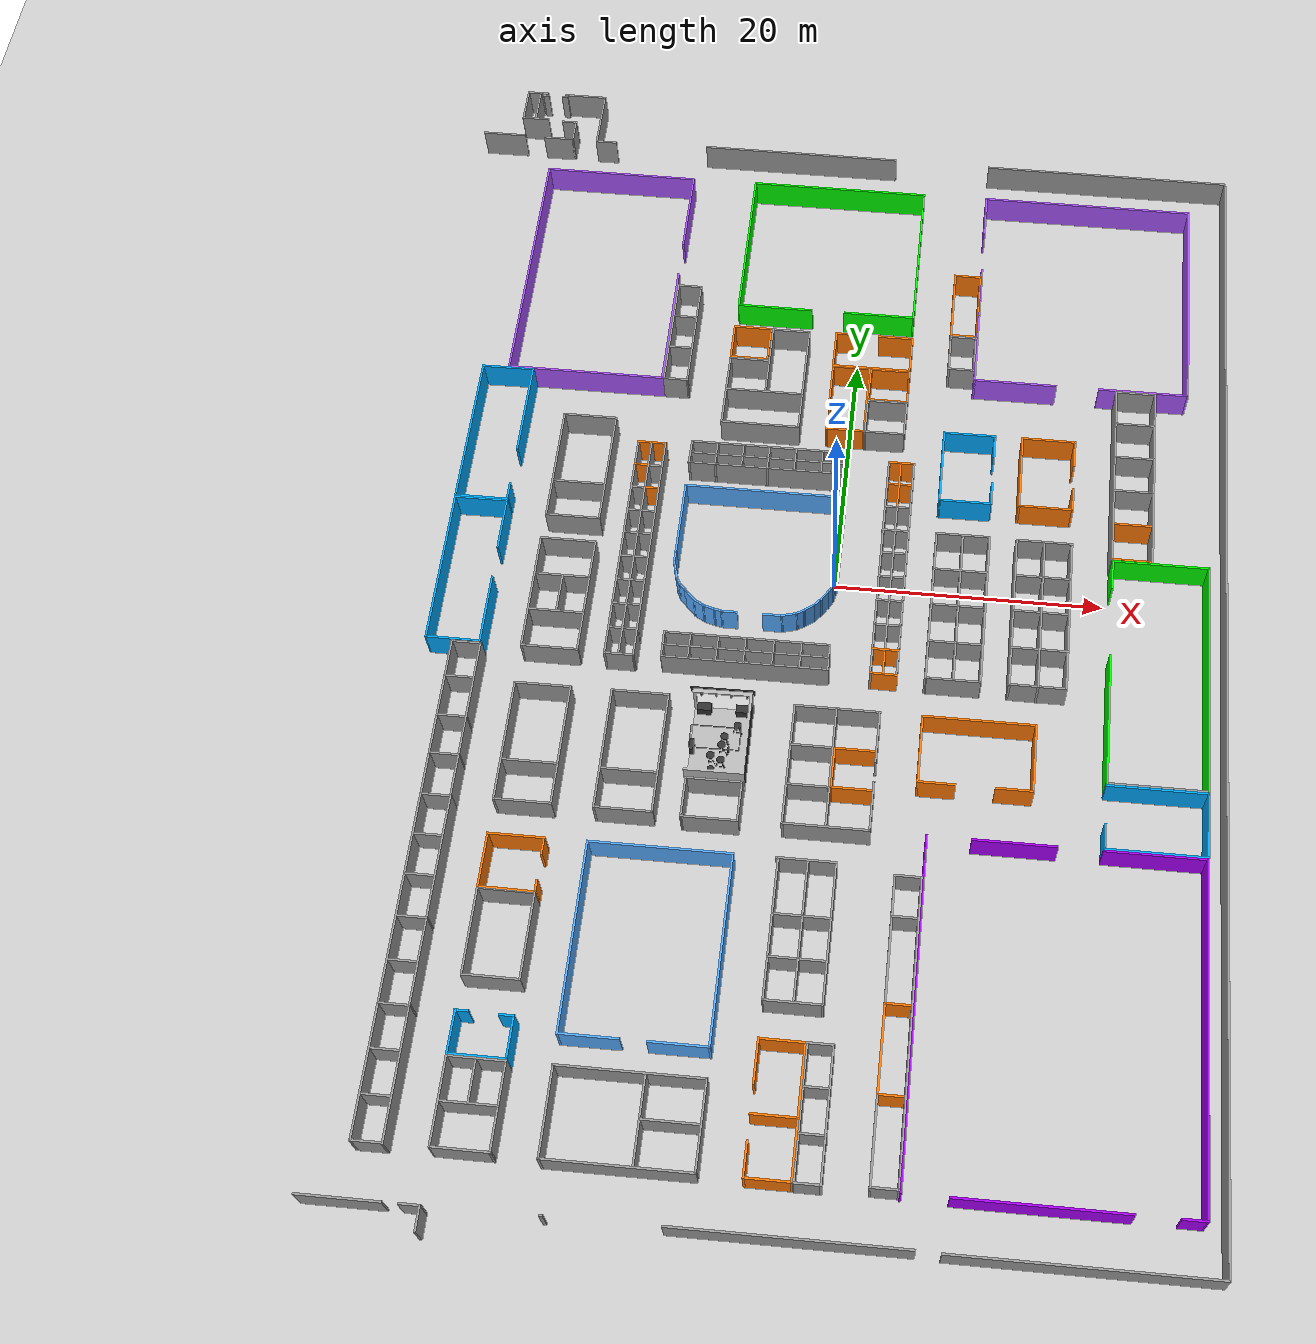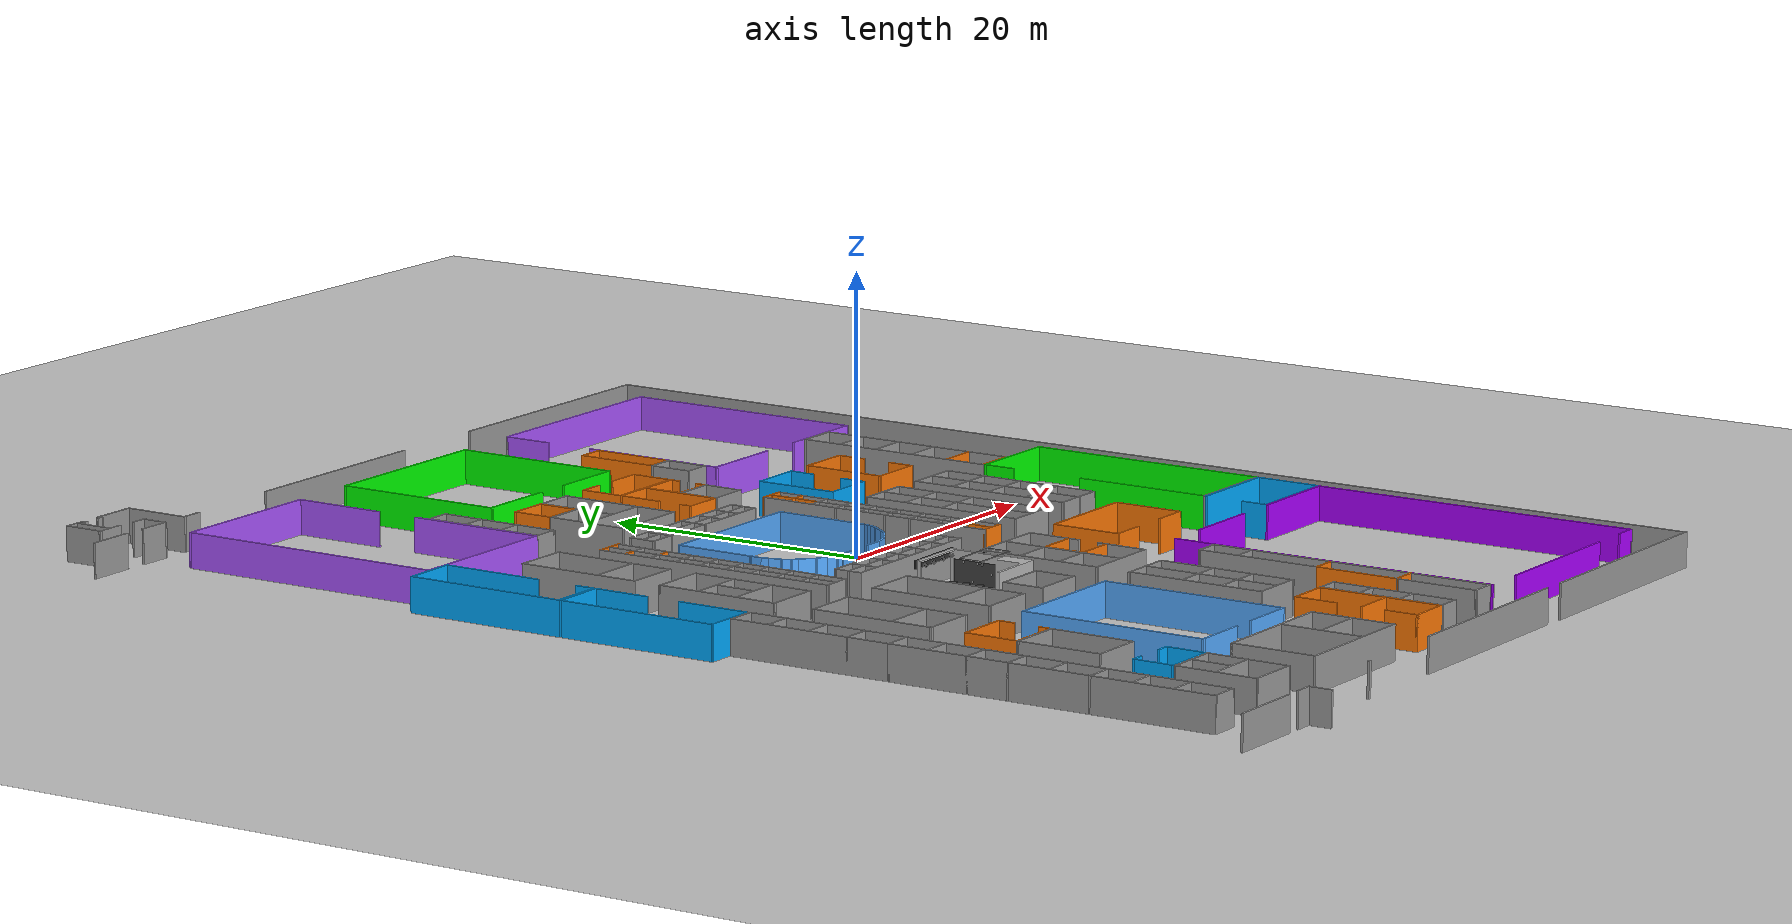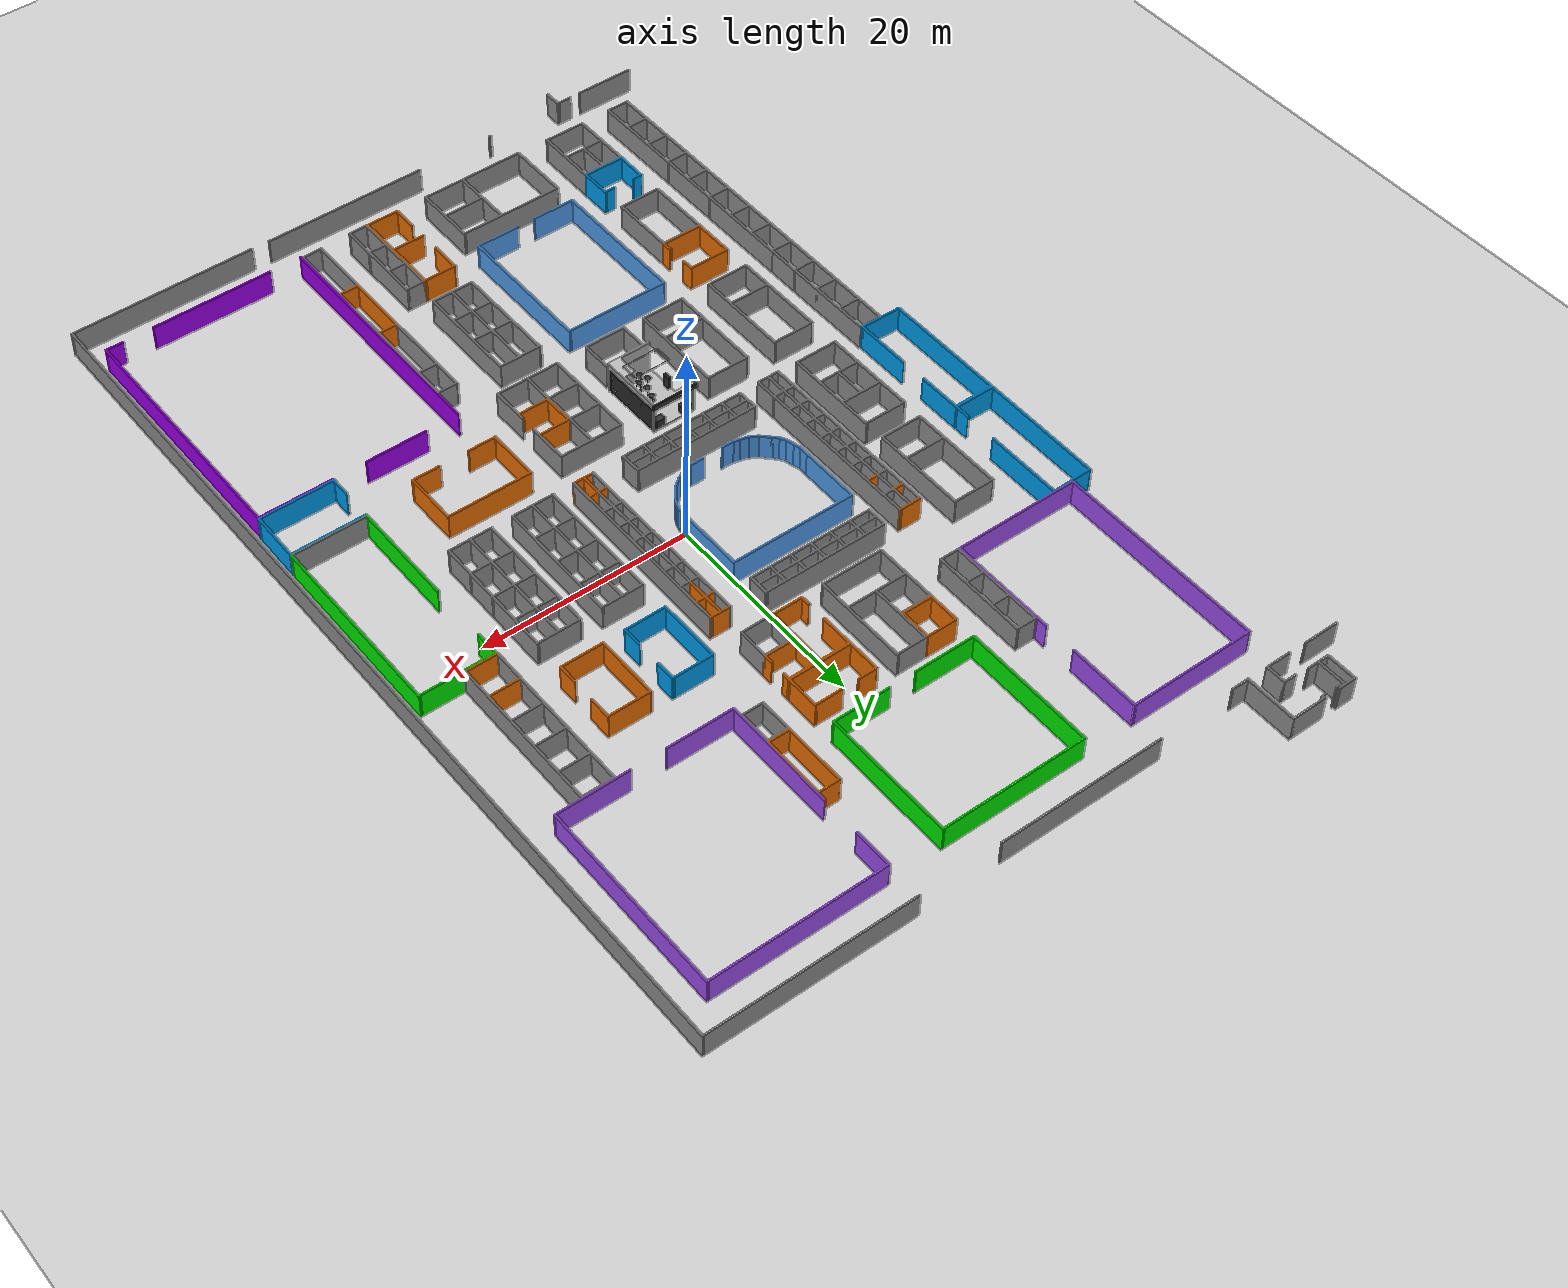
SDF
<?xml version="1.0" ?>
<sdf version="1.4">
  <world name="default">

    <include>
      <uri>model://ground_plane</uri>
    </include>

    <include>
      <uri>model://sun</uri>
    </include>

    <include>
      <uri>model://cr2_gazebo/models/lond_fintech2018/base</uri>
      <name>fintech</name>
    </include>

    <include>
      <uri>model://cr2_gazebo/models/lond_fintech2018/base_neighbour_box</uri>
      <name>neighbour_walls</name>
    </include>

    <include>
      <uri>model://cr2_gazebo/models/lond_fintech2018/construction</uri>
      <name>construction</name>
      <pose>-6.97021 -13.9566 1.6 0 0 -3.13304</pose>
    </include>

    <include>
      <uri>model://cr2_gazebo/models/lond_fintech2018/chair</uri>
      <name>chair</name>
      <pose>-6.20099 -14.6145 0.845384 0 -1.1e-05 -0.109586</pose>
    </include>

    <include>
      <uri>model://cr2_gazebo/models/lond_fintech2018/chair</uri>
      <name>chair_1</name>
      <pose>-6.83457 -15.4592 0.845381 5e-06 -1.2e-05 -0.110544</pose>
    </include>

    <include>
      <uri>model://cr2_gazebo/models/lond_fintech2018/chair</uri>
      <name>chair_2</name>
      <pose>-7.45906 -16.268 0.845381 2e-06 -1e-06 -0.110191</pose>
    </include>

    <include>
      <uri>model://cr2_gazebo/models/lond_fintech2018/chair</uri>
      <name>chair_3</name>
      <pose>-5.90723 -12.7074 0.845381 -2e-06 -3e-06 -0.109988</pose>
    </include>

    <include>
      <uri>model://cr2_gazebo/models/lond_fintech2018/chair</uri>
      <name>chair_4</name>
      <pose>-6.76208 -13.6221 0.84538 2e-06 -2e-06 -0.109909</pose>
    </include>

    <include>
      <uri>model://cr2_gazebo/models/lond_fintech2018/light_construction</uri>
      <name>light_construction</name>
      <pose>-7.166 -14.9 3.62658 0 -0 0.008388</pose>
    </include>

    <include>
      <uri>model://cr2_gazebo/models/lond_fintech2018/logo</uri>
      <name>logo</name>
      <pose>-8.2508 -10.7838 2.9 0 0 -3.12334</pose>
    </include>

    <include>
      <uri>model://cr2_gazebo/models/lond_fintech2018/louver</uri>
      <name>louver</name>
      <pose>-5.00702 -14.1027 1.22778 0 -0 0.007084</pose>
    </include>

    <include>
      <uri>model://cr2_gazebo/models/lond_fintech2018/table1</uri>
      <name>table1</name>
      <pose>-5.69254 -11.2204 0.556427 0 -0 0.008843</pose>
    </include>

    <include>
      <uri>model://cr2_gazebo/models/lond_fintech2018/table1</uri>
      <name>table1_1</name>
      <pose>-8.48022 -11.249 0.556428 0 -0 0.010465</pose>
    </include>

    <include>
      <uri>model://cr2_gazebo/models/lond_fintech2018/table2</uri>
      <name>table2</name>
      <pose>-9.01844 -14.4284 0.806477 3.14159 2e-06 0.003107</pose>
    </include>

    <include>
      <uri>model://cr2_gazebo/models/lond_fintech2018/hight_table</uri>
      <name>hight_table</name>
      <pose>-7.55928 -15.2541 0.886699 7e-06 -7e-06 1.71701</pose>
    </include>

    <include>
      <uri>model://cr2_gazebo/models/lond_fintech2018/hight_table</uri>
      <name>hight_table_1</name>
      <pose>-6.85374 -14.372 0.886696 8e-06 -6e-06 1.7163</pose>
    </include>

    <include>
      <uri>model://cr2_gazebo/models/lond_fintech2018/signboard</uri>
      <name>signboard</name>
      <pose>-7.10674 -10.837 2.84256 -0.031047 0.000713 -3.13229</pose>
    </include>

    <include>
      <uri>model://cr2_gazebo/models/lond_fintech2018/light</uri>
      <name>light_1_1</name>
      <pose>-8.76 -15.75 3.46 -1.55 -0 0.008388</pose>
    </include>

    <include>
      <uri>model://cr2_gazebo/models/lond_fintech2018/light</uri>
      <name>light_1_2</name>
      <pose>-5.77 -14.00 3.41 -1.57 -0 0.008388</pose>
    </include>

    <include>
      <uri>model://cr2_gazebo/models/lond_fintech2018/light</uri>
      <name>light_2_1</name>
      <pose>-5.34 -11.12 2.72 -0.35 0.01 -3.13</pose>
    </include>

    <include>
      <uri>model://cr2_gazebo/models/lond_fintech2018/light</uri>
      <name>light_2_2</name>
      <pose>-6.44 -11.12 2.72 -0.35 0.01 -3.13</pose>
    </include>

    <include>
      <uri>model://cr2_gazebo/models/lond_fintech2018/light</uri>
      <name>light_2_3</name>
      <pose>-7.55 -11.12 2.72 -0.35 0.01 -3.13</pose>
    </include>

    <include>
      <uri>model://cr2_gazebo/models/lond_fintech2018/light</uri>
      <name>light_2_4</name>
      <pose>-8.6 -11.19 2.72 -0.35 0.01 -3.13</pose>
    </include>

    <gui fullscreen='0'>
      <camera name='user_camera'>
        <pose>4.927360 -4.376610 3.740080 0.000000 0.275643 2.356190</pose>
        <view_controller>orbit</view_controller>
      </camera>
    </gui>

  </world>
</sdf>

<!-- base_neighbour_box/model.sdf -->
<sdf version='1.6'>
  <model name='neighbour'>
    <pose frame=''>-6.98944 -19.0575 0 0 -0 0</pose>
    <link name='Wall_0'>
      <collision name='Wall_0_Collision'>
        <geometry>
          <box>
            <size>3.07416 0.15 2.5</size>
          </box>
        </geometry>
        <pose frame=''>0 0 1.25 0 -0 0</pose>
      </collision>
      <visual name='Wall_0_Visual'>
        <pose frame=''>0 0 1.25 0 -0 0</pose>
        <geometry>
          <box>
            <size>3.07416 0.15 2.5</size>
          </box>
        </geometry>
        <material>
          <script>
            <uri>file://media/materials/scripts/gazebo.material</uri>
            <name>Gazebo/Grey</name>
          </script>
          <ambient>1 1 1 1</ambient>
        </material>
        <meta>
          <layer>0</layer>
        </meta>
      </visual>
      <pose frame=''>-1.97832 -0.002472 0 0 0 -1.57249</pose>
    </link>
    <link name='Wall_2'>
      <collision name='Wall_2_Collision'>
        <geometry>
          <box>
            <size>4.09675 0.15 2.5</size>
          </box>
        </geometry>
        <pose frame=''>0 0 1.25 0 -0 0</pose>
      </collision>
      <visual name='Wall_2_Visual'>
        <pose frame=''>0 0 1.25 0 -0 0</pose>
        <geometry>
          <box>
            <size>4.09675 0.15 2.5</size>
          </box>
        </geometry>
        <material>
          <script>
            <uri>file://media/materials/scripts/gazebo.material</uri>
            <name>Gazebo/Grey</name>
          </script>
          <ambient>1 1 1 1</ambient>
        </material>
        <meta>
          <layer>0</layer>
        </meta>
      </visual>
      <pose frame=''>0.002471 1.45713 0 0 0 -0.001253</pose>
    </link>
    <link name='Wall_4'>
      <collision name='Wall_4_Collision'>
        <geometry>
          <box>
            <size>3.06922 0.15 2.5</size>
          </box>
        </geometry>
        <pose frame=''>0 0 1.25 0 -0 0</pose>
      </collision>
      <visual name='Wall_4_Visual'>
        <pose frame=''>0 0 1.25 0 -0 0</pose>
        <geometry>
          <box>
            <size>3.06922 0.15 2.5</size>
          </box>
        </geometry>
        <material>
          <script>
            <uri>file://media/materials/scripts/gazebo.material</uri>
            <name>Gazebo/Grey</name>
          </script>
          <ambient>1 1 1 1</ambient>
        </material>
        <meta>
          <layer>0</layer>
        </meta>
      </visual>
      <pose frame=''>1.97832 0.004944 0 0 0 -1.57249</pose>
    </link>
    <link name='Wall_5'>
      <collision name='Wall_5_Collision'>
        <geometry>
          <box>
            <size>4.10169 0.15 2.5</size>
          </box>
        </geometry>
        <pose frame=''>0 0 1.25 0 -0 0</pose>
      </collision>
      <visual name='Wall_5_Visual'>
        <pose frame=''>0 0 1.25 0 -0 0</pose>
        <geometry>
          <box>
            <size>4.10169 0.15 2.5</size>
          </box>
        </geometry>
        <material>
          <script>
            <uri>file://media/materials/scripts/gazebo.material</uri>
            <name>Gazebo/Grey</name>
          </script>
          <ambient>1 1 1 1</ambient>
        </material>
        <meta>
          <layer>0</layer>
        </meta>
      </visual>
      <pose frame=''>0 -1.46208 0 0 0 -3.14034</pose>
    </link>
    <static>1</static>
  </model>
</sdf>

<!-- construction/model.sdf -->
<sdf version='1.5'>
    <model name="construction">
        <pose>0 0 0 0 0 0</pose>
        <static>true</static>
        <link name='model_body'>
            <visual name="visual">
                <geometry>
                    <mesh>
                        <uri>model://cr2_gazebo/meshes/lond_fintech2018/construction_visual.dae</uri>
                        <scale>1 1 1</scale>
                    </mesh>
                </geometry>
            </visual>

            <collision name="collision">
                <geometry>
                    <mesh>
                        <uri>model://cr2_gazebo/meshes/lond_fintech2018/construction_collision.stl</uri>
                        <scale>1 1 1</scale>

                    </mesh>
                </geometry>
                <pose> 0 0 -0.01     0 0 0 </pose>
            </collision>

            <inertial>
                <pose> 0 0 0 0 0 0</pose>
                <inertia>
                    <ixx>851.2016666666665</ixx>
                    <ixy>0</ixy>
                    <ixz>0</ixz>
                    <iyy>480.26833333333326</iyy>
                    <iyz>0</iyz>
                    <izz>990.1366666666664</izz>
                </inertia>
                <mass>200.0</mass>
            </inertial>
        </link>
    </model>
</sdf>

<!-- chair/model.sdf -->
<sdf version='1.5'>
    <model name="chair">
        <pose>0 0 0 0 0 0</pose>
        <static>false</static>
        <link name='model_body'>
            <visual name="visual">
                <geometry>
                    <mesh>
                        <uri>model://cr2_gazebo/meshes/lond_fintech2018/chair_visual.dae</uri>
                        <scale>1 1 1</scale>
                    </mesh>
                </geometry>
            </visual>

            <collision name="collision">
                <geometry>
                    <mesh>
                        <uri>model://cr2_gazebo/meshes/lond_fintech2018/chair_collision.stl</uri>
                        <scale>1 1 1</scale>
                    </mesh>
                </geometry>
            </collision>

            <inertial>
                <pose> 0 0 0 0 0 0</pose>
                <inertia>
                    <ixx>0.23187500000000005</ixx>
                    <ixy>0</ixy>
                    <ixz>0</ixz>
                    <iyy>0.23187500000000005</iyy>
                    <iyz>0</iyz>
                    <izz>0.21175000000000005</izz>
                </inertia>
                <mass>7.0</mass>
            </inertial>
        </link>
    </model>
</sdf>

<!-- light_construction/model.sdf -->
<sdf version='1.5'>
    <model name="light_construction">
        <pose>0 0 0 0 0 0</pose>
        <static>true</static>
        <link name='model_body'>
            <visual name="visual">
                <geometry>
                    <mesh>
                        <uri>model://cr2_gazebo/meshes/lond_fintech2018/light_construction_visual.dae</uri>
                        <scale>1 1 1</scale>
                    </mesh>
                </geometry>
            </visual>

            <collision name="collision">
                <geometry>
                    <mesh>
                        <uri>model://cr2_gazebo/meshes/lond_fintech2018/light_construction_collision.stl</uri>
                        <scale>1 1 1</scale>
                    </mesh>
                </geometry>
            </collision>

            <inertial>
                <pose> 0 0 0 0 0 0</pose>
                <inertia>
                    <ixx>4.650833333333333</ixx>
                    <ixy>0</ixy>
                    <ixz>0</ixz>
                    <iyy>20.41933333333333</iyy>
                    <iyz>0</iyz>
                    <izz>25.064833333333333</izz>
                </inertia>
                <mass>20.0</mass>
            </inertial>
        </link>
    </model>
</sdf>

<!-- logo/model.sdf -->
<sdf version='1.5'>
    <model name="logo">
        <pose>0 0 0 0 0 0</pose>
        <static>true</static>
        <link name='model_body'>
            <visual name="visual">
                <geometry>
                    <mesh>
                        <uri>model://cr2_gazebo/meshes/lond_fintech2018/logo_visual.dae</uri>
                        <scale>1 1 1</scale>
                    </mesh>
                </geometry>
            </visual>

            <collision name="collision">
                <geometry>
                    <mesh>
                        <uri>model://cr2_gazebo/meshes/lond_fintech2018/logo_collision.stl</uri>
                        <scale>1 1 1</scale>
                    </mesh>
                </geometry>
            </collision>

            <inertial>
                <pose> 0 0 0 0 0 0</pose>
                <inertia>
                    <ixx>0.01558958333333333</ixx>
                    <ixy>0</ixy>
                    <ixz>0</ixz>
                    <iyy>0.5289229166666666</iyy>
                    <iyz>0</iyz>
                    <izz>0.5395833333333332</izz>
                </inertia>
                <mass>7.0</mass>
            </inertial>
        </link>
    </model>
</sdf>

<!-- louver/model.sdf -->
<sdf version='1.5'>
    <model name="louver">
        <pose>0 0 0 0 0 0</pose>
        <static>true</static>
        <link name='model_body'>
            <visual name="visual">
                <geometry>
                    <mesh>
                        <uri>model://cr2_gazebo/meshes/lond_fintech2018/louver_visual.dae</uri>
                        <scale>1 1 1</scale>
                    </mesh>
                </geometry>
            </visual>

            <collision name="collision">
                <geometry>
                    <mesh>
                        <uri>model://cr2_gazebo/meshes/lond_fintech2018/louver_collision.stl</uri>
                        <scale>1 1 1</scale>
                    </mesh>
                </geometry>
            </collision>

            <inertial>
                <pose> 0 0 0 0 0 0</pose>
                <inertia>
                    <ixx>22.408403333333332</ixx>
                    <ixy>0</ixy>
                    <ixz>0</ixz>
                    <iyy>21.894946666666666</iyy>
                    <iyz>0</iyz>
                    <izz>0.6126833333333332</izz>
                </inertia>
                <mass>40.0</mass>
            </inertial>
        </link>
    </model>
</sdf>

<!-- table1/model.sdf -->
<sdf version='1.5'>
    <model name="table1">
        <pose>0 0 0 0 0 0</pose>
        <static>false</static>
        <link name='model_body'>
            <visual name="visual">
                <geometry>
                    <mesh>
                        <uri>model://cr2_gazebo/meshes/lond_fintech2018/table1_visual.dae</uri>
                        <scale>1 1 1</scale>
                    </mesh>
                </geometry>
            </visual>

            <collision name="collision">
                <geometry>
                    <mesh>
                        <uri>model://cr2_gazebo/meshes/lond_fintech2018/table1_collision.stl</uri>
                        <scale>1 1 1</scale>
                    </mesh>
                </geometry>
            </collision>

            <inertial>
                <pose> 0 0 0 0 0 0</pose>
                <inertia>
                    <ixx>1.6666666666666665</ixx>
                    <ixy>0</ixy>
                    <ixz>0</ixz>
                    <iyy>2.7333333333333334</iyy>
                    <iyz>0</iyz>
                    <izz>2.266666666666666</izz>
                </inertia>
                <mass>20.0</mass>
            </inertial>
        </link>
    </model>
</sdf>

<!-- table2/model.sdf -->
<sdf version='1.5'>
    <model name="table2">
        <pose>0 0 0 0 0 0</pose>
        <static>false</static>
        <link name='model_body'>
            <visual name="visual">
                <geometry>
                    <mesh>
                        <uri>model://cr2_gazebo/meshes/lond_fintech2018/table2_visual.dae</uri>
                        <scale>1 1 1</scale>
                    </mesh>
                </geometry>
            </visual>

            <collision name="collision">
                <geometry>
                    <mesh>
                        <uri>model://cr2_gazebo/meshes/lond_fintech2018/table2_collision.stl</uri>
                        <scale>1 1 1</scale>
                    </mesh>
                </geometry>
            </collision>

            <inertial>
                <pose> 0 0 0 0 0 0</pose>
                <inertia>
                    <ixx>3.6333333333333333</ixx>
                    <ixy>0</ixy>
                    <ixz>0</ixz>
                    <iyy>2.966666666666667</iyy>
                    <iyz>0</iyz>
                    <izz>0.9666666666666666</izz>
                </inertia>
                <mass>20.0</mass>
            </inertial>
        </link>
    </model>
</sdf>

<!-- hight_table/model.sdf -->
<sdf version='1.5'>
    <model name="hight_table">
        <pose>0 0 0 0 0 0</pose>
        <static>false</static>
        <link name='model_body'>
            <visual name="visual">
                <geometry>
                    <mesh>
                        <uri>model://cr2_gazebo/meshes/lond_fintech2018/hight_table_visual.dae</uri>
                        <scale>1 1 1</scale>
                    </mesh>
                </geometry>
            </visual>

            <collision name="collision">
                <geometry>
                    <mesh>
                        <uri>model://cr2_gazebo/meshes/lond_fintech2018/hight_table_collision.stl</uri>
                        <scale>1 1 1</scale>
                    </mesh>
                </geometry>
            </collision>

            <inertial>
                <pose> 0 0 0 0 0 0</pose>
                <inertia>
                    <ixx>1.268175</ixx>
                    <ixy>0</ixy>
                    <ixz>0</ixz>
                    <iyy>1.37296875</iyy>
                    <iyz>0</iyz>
                    <izz>0.40854374999999993</izz>
                </inertia>
                <mass>15.0</mass>
            </inertial>
        </link>
    </model>
</sdf>

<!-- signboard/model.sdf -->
<sdf version='1.5'>
    <model name="signboard">
        <pose>0 0 0 0 0 0</pose>
        <static>true</static>
        <link name='model_body'>
            <visual name="visual">
                <geometry>
                    <mesh>
                        <uri>model://cr2_gazebo/meshes/lond_fintech2018/signboard_visual.dae</uri>
                        <scale>1 1 1</scale>
                    </mesh>
                </geometry>
            </visual>

            <collision name="collision">
                <geometry>
                    <mesh>
                        <uri>model://cr2_gazebo/meshes/lond_fintech2018/signboard_collision.stl</uri>
                        <scale>1 1 1</scale>
                    </mesh>
                </geometry>
            </collision>

            <inertial>
                <pose> 0 0 0 0 0 0</pose>
                <inertia>
                    <ixx>0.46540125</ixx>
                    <ixy>0</ixy>
                    <ixz>0</ixz>
                    <iyy>26.465401249999996</iyy>
                    <iyz>0</iyz>
                    <izz>26.899999999999995</izz>
                </inertia>
                <mass>15.0</mass>
            </inertial>
        </link>
    </model>
</sdf>

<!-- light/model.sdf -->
<sdf version='1.5'>
    <model name="hight_table">
        <pose>0 0 0 0 0 0</pose>
        <static>true</static>
        <link name='model_body'>
            <visual name="visual">
                <geometry>
                    <mesh>
                        <uri>model://cr2_gazebo/meshes/lond_fintech2018/light_visual.dae</uri>
                        <scale>1 1 1</scale>
                    </mesh>
                </geometry>
            </visual>

            <collision name="collision">
                <geometry>
                    <mesh>
                        <uri>model://cr2_gazebo/meshes/lond_fintech2018/light_collision.stl</uri>
                        <scale>1 1 1</scale>
                    </mesh>
                </geometry>
            </collision>

            <inertial>
                <pose> 0 0 0 0 0 0</pose>
                <inertia>
                    <ixx>1.268175</ixx>
                    <ixy>0</ixy>
                    <ixz>0</ixz>
                    <iyy>1.37296875</iyy>
                    <iyz>0</iyz>
                    <izz>0.40854374999999993</izz>
                </inertia>
                <mass>2.0</mass>
            </inertial>
        </link>
    </model>
</sdf>
